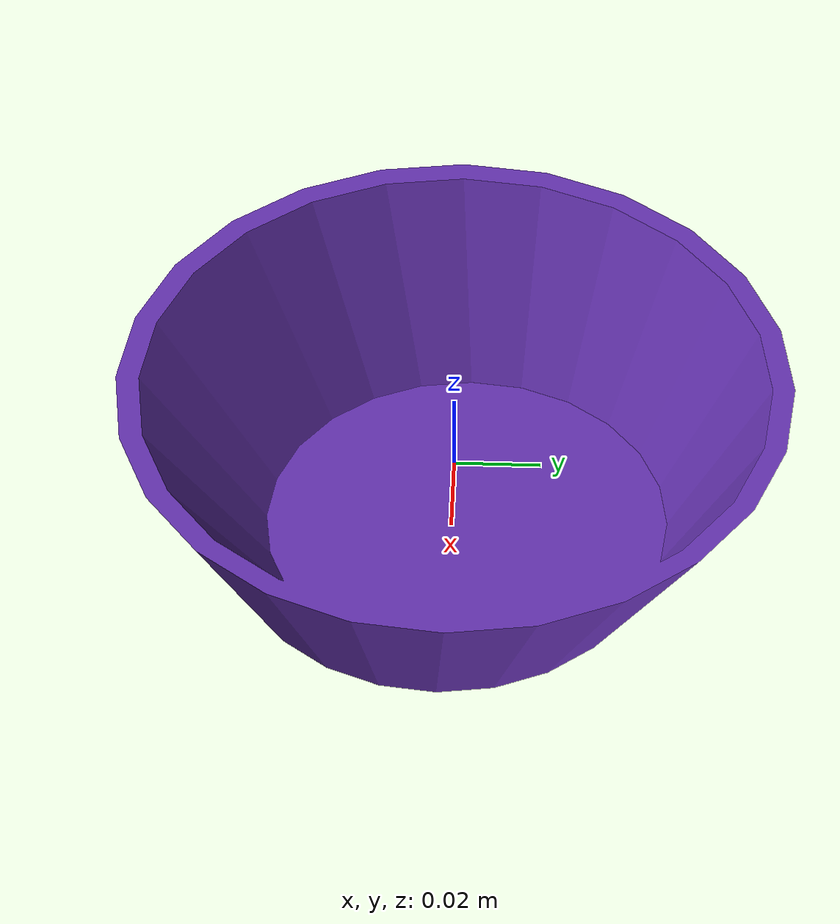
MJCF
<mujoco model="top_watertight_tiny">
  <default>
    <default group="2" type="mesh" contype="0" conaffinity="0">
      <geom group="2" type="mesh" contype="0" conaffinity="0"/>
    </default>
    <default group="3" type="mesh">
      <geom group="3" type="mesh"/>
    </default>
  </default>
  <asset>
    <mesh file="top_watertight_tiny.obj"/>
    <mesh file="top_watertight_tiny_collision_0.obj"/>
    <mesh file="top_watertight_tiny_collision_1.obj"/>
    <mesh file="top_watertight_tiny_collision_2.obj"/>
    <mesh file="top_watertight_tiny_collision_3.obj"/>
    <mesh file="top_watertight_tiny_collision_4.obj"/>
    <mesh file="top_watertight_tiny_collision_5.obj"/>
    <mesh file="top_watertight_tiny_collision_6.obj"/>
    <mesh file="top_watertight_tiny_collision_7.obj"/>
    <mesh file="top_watertight_tiny_collision_8.obj"/>
    <mesh file="top_watertight_tiny_collision_9.obj"/>
    <mesh file="top_watertight_tiny_collision_10.obj"/>
    <mesh file="top_watertight_tiny_collision_11.obj"/>
    <mesh file="top_watertight_tiny_collision_12.obj"/>
    <mesh file="top_watertight_tiny_collision_13.obj"/>
    <mesh file="top_watertight_tiny_collision_14.obj"/>
    <mesh file="top_watertight_tiny_collision_15.obj"/>
    <mesh file="top_watertight_tiny_collision_16.obj"/>
    <mesh file="top_watertight_tiny_collision_17.obj"/>
    <mesh file="top_watertight_tiny_collision_18.obj"/>
  </asset>
  <worldbody>
    <body name="top_watertight_tiny">
      <freejoint/>
      <geom mesh="top_watertight_tiny" group="2" type="mesh" rgba="0.4 0.2 0.7 1" contype="0" conaffinity="0"/>
      <geom mesh="top_watertight_tiny_collision_0" rgba="0.7404443327526798 0.28488644564655896 0.009796521551427295 1" group="3" type="mesh"/>
      <geom mesh="top_watertight_tiny_collision_1" rgba="0.413159827598068 0.5584943845992637 0.17439224409840792 1" group="3" type="mesh"/>
      <geom mesh="top_watertight_tiny_collision_2" rgba="0.46992062994812456 0.21208799285927005 0.7186065397594684 1" group="3" type="mesh"/>
      <geom mesh="top_watertight_tiny_collision_3" rgba="0.5763116477232699 0.7539619805126365 0.6811164967117064 1" group="3" type="mesh"/>
      <geom mesh="top_watertight_tiny_collision_4" rgba="0.07743698103234631 0.4830167198060866 0.25690974042602177 1" group="3" type="mesh"/>
      <geom mesh="top_watertight_tiny_collision_5" rgba="0.9630528249532695 0.11630331735341237 0.2694739410238395 1" group="3" type="mesh"/>
      <geom mesh="top_watertight_tiny_collision_6" rgba="0.558526980665395 0.7559335819708917 0.3030660563789884 1" group="3" type="mesh"/>
      <geom mesh="top_watertight_tiny_collision_7" rgba="0.5856085818989019 0.7550217282739524 0.5076343824833661 1" group="3" type="mesh"/>
      <geom mesh="top_watertight_tiny_collision_8" rgba="0.9537007772395862 0.23001508424574102 0.8080641580329765 1" group="3" type="mesh"/>
      <geom mesh="top_watertight_tiny_collision_9" rgba="0.017279686535594307 0.09484465428582578 0.10556368504431157 1" group="3" type="mesh"/>
      <geom mesh="top_watertight_tiny_collision_10" rgba="0.851445827402224 0.4312888698923708 0.47947394512656805 1" group="3" type="mesh"/>
      <geom mesh="top_watertight_tiny_collision_11" rgba="0.9418609143185016 0.23155949487933747 0.7203618365590295 1" group="3" type="mesh"/>
      <geom mesh="top_watertight_tiny_collision_12" rgba="0.6146888302184819 0.9619633820734809 0.28577550339848656 1" group="3" type="mesh"/>
      <geom mesh="top_watertight_tiny_collision_13" rgba="0.7658928720331579 0.0037615445080991794 0.14730448913945438 1" group="3" type="mesh"/>
      <geom mesh="top_watertight_tiny_collision_14" rgba="0.06155990204120365 0.5326542527349352 0.27061451438783324 1" group="3" type="mesh"/>
      <geom mesh="top_watertight_tiny_collision_15" rgba="0.854425986558647 0.033586678037742845 0.7843963007832379 1" group="3" type="mesh"/>
      <geom mesh="top_watertight_tiny_collision_16" rgba="0.284799108997162 0.3411954553039057 0.29075120501827567 1" group="3" type="mesh"/>
      <geom mesh="top_watertight_tiny_collision_17" rgba="0.07479842174258788 0.3398206472558475 0.826918252443808 1" group="3" type="mesh"/>
      <geom mesh="top_watertight_tiny_collision_18" rgba="0.0292395534212051 0.39521917419539065 0.7606532998603766 1" group="3" type="mesh"/>
    </body>
  </worldbody>
</mujoco>
